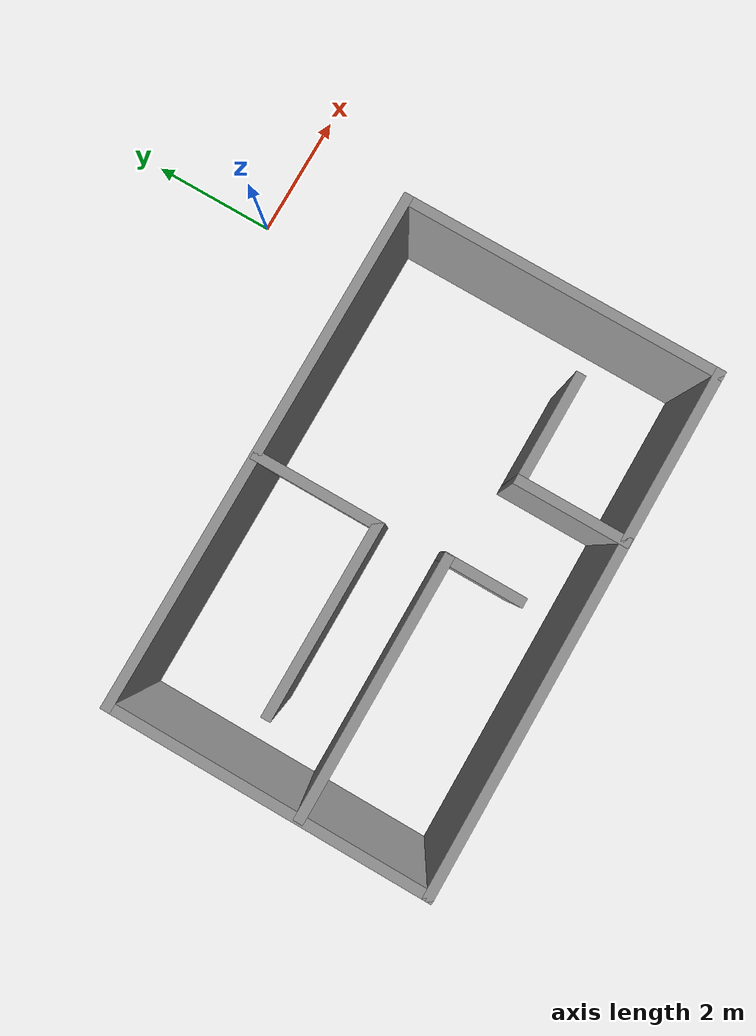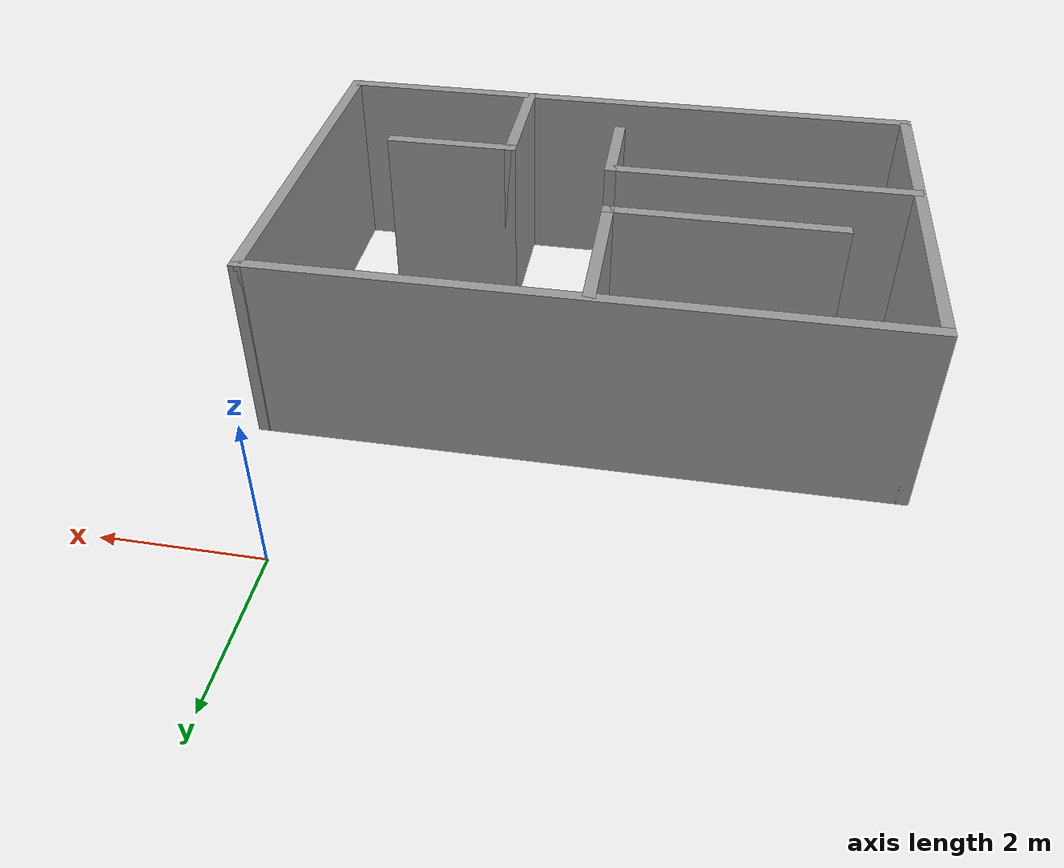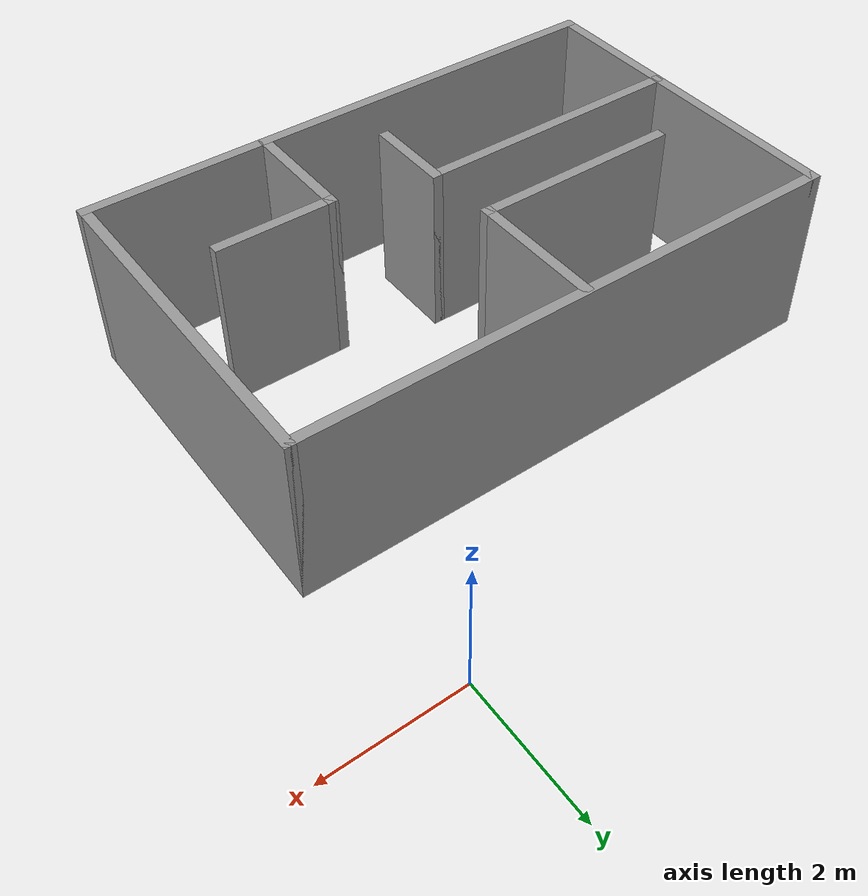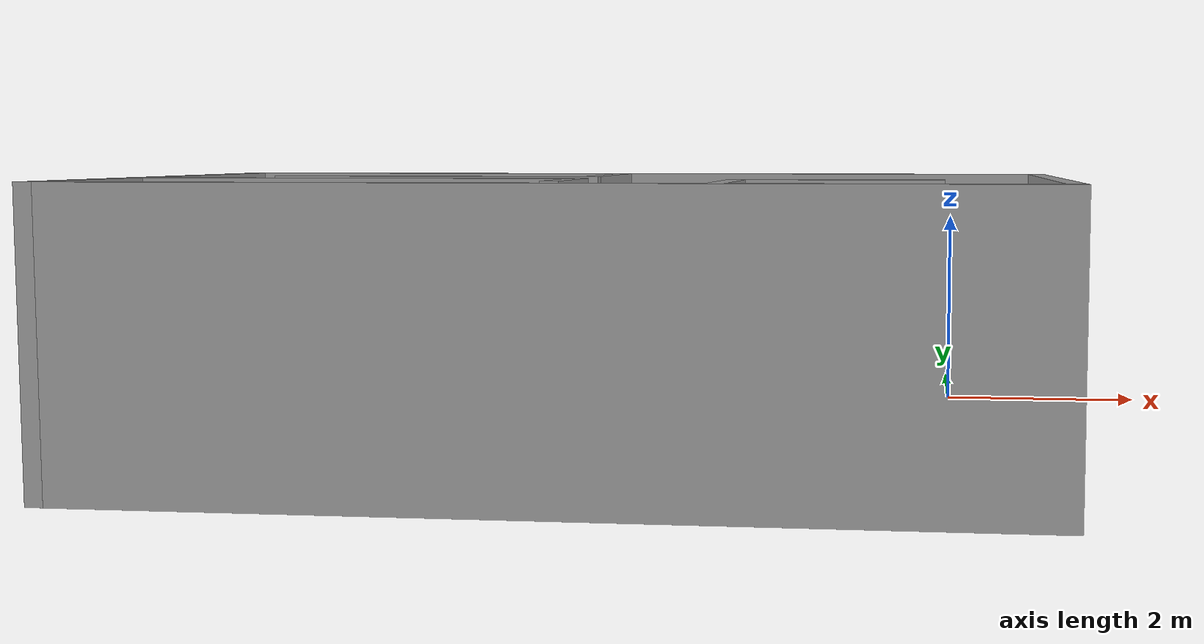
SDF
<?xml version='1.0'?>
<sdf version='1.7'>
  <model name='room'>
    <pose>-3.145 -3.5275 0 0 -0 0</pose>
    <link name='Wall_10'>
      <collision name='Wall_10_Collision'>
        <geometry>
          <box>
            <size>4 0.15 2.5</size>
          </box>
        </geometry>
        <pose>0 0 1.25 0 -0 0</pose>
      </collision>
      <visual name='Wall_10_Visual'>
        <pose>0 0 1.25 0 -0 0</pose>
        <geometry>
          <box>
            <size>4 0.15 2.5</size>
          </box>
        </geometry>
        <material>
          <script>
            <uri>file://media/materials/scripts/gazebo.material</uri>
            <name>Gazebo/Grey</name>
          </script>
          <ambient>1 1 1 1</ambient>
        </material>
        <meta>
          <layer>0</layer>
        </meta>
      </visual>
      <pose>-1.97 -1.5125 0 0 -0 0</pose>
    </link>
    <link name='Wall_11'>
      <collision name='Wall_11_Collision'>
        <geometry>
          <box>
            <size>1.25 0.15 2.5</size>
          </box>
        </geometry>
        <pose>0 0 1.25 0 -0 0</pose>
      </collision>
      <visual name='Wall_11_Visual'>
        <pose>0 0 1.25 0 -0 0</pose>
        <geometry>
          <box>
            <size>1.25 0.15 2.5</size>
          </box>
        </geometry>
        <material>
          <script>
            <uri>file://media/materials/scripts/gazebo.material</uri>
            <name>Gazebo/Grey</name>
          </script>
          <ambient>1 1 1 1</ambient>
        </material>
        <meta>
          <layer>0</layer>
        </meta>
      </visual>
      <pose>-0.045 -2.0625 0 0 -0 -1.5708</pose>
    </link>
    <link name='Wall_13'>
      <collision name='Wall_13_Collision'>
        <geometry>
          <box>
            <size>2 0.15 2.5</size>
          </box>
        </geometry>
        <pose>0 0 1.25 0 -0 0</pose>
      </collision>
      <visual name='Wall_13_Visual'>
        <pose>0 0 1.25 0 -0 0</pose>
        <geometry>
          <box>
            <size>2 0.15 2.5</size>
          </box>
        </geometry>
        <material>
          <script>
            <uri>file://media/materials/scripts/gazebo.material</uri>
            <name>Gazebo/Grey</name>
          </script>
          <ambient>1 1 1 1</ambient>
        </material>
        <meta>
          <layer>0</layer>
        </meta>
      </visual>
      <pose>-0.125 0.4425 0 0 -0 -1.5708</pose>
    </link>
    <link name='Wall_14'>
      <collision name='Wall_14_Collision'>
        <geometry>
          <box>
            <size>3 0.15 2.5</size>
          </box>
        </geometry>
        <pose>0 0 1.25 0 -0 0</pose>
      </collision>
      <visual name='Wall_14_Visual'>
        <pose>0 0 1.25 0 -0 0</pose>
        <geometry>
          <box>
            <size>3 0.15 2.5</size>
          </box>
        </geometry>
        <material>
          <script>
            <uri>file://media/materials/scripts/gazebo.material</uri>
            <name>Gazebo/Grey</name>
          </script>
          <ambient>1 1 1 1</ambient>
        </material>
        <meta>
          <layer>0</layer>
        </meta>
      </visual>
      <pose>-1.55 -0.4825 0 0 -0 3.14159</pose>
    </link>
    <link name='Wall_16'>
      <collision name='Wall_16_Collision'>
        <geometry>
          <box>
            <size>1.75 0.15 2.5</size>
          </box>
        </geometry>
        <pose>0 0 1.25 0 -0 0</pose>
      </collision>
      <visual name='Wall_16_Visual'>
        <pose>0 0 1.25 0 -0 0</pose>
        <geometry>
          <box>
            <size>1.75 0.15 2.5</size>
          </box>
        </geometry>
        <material>
          <script>
            <uri>file://media/materials/scripts/gazebo.material</uri>
            <name>Gazebo/Grey</name>
          </script>
          <ambient>1 1 1 1</ambient>
        </material>
        <meta>
          <layer>0</layer>
        </meta>
      </visual>
      <pose>1.335 -2.6425 0 0 -0 1.5708</pose>
    </link>
    <link name='Wall_17'>
      <collision name='Wall_17_Collision'>
        <geometry>
          <box>
            <size>1.75 0.15 2.5</size>
          </box>
        </geometry>
        <pose>0 0 1.25 0 -0 0</pose>
      </collision>
      <visual name='Wall_17_Visual'>
        <pose>0 0 1.25 0 -0 0</pose>
        <geometry>
          <box>
            <size>1.75 0.15 2.5</size>
          </box>
        </geometry>
        <material>
          <script>
            <uri>file://media/materials/scripts/gazebo.material</uri>
            <name>Gazebo/Grey</name>
          </script>
          <ambient>1 1 1 1</ambient>
        </material>
        <meta>
          <layer>0</layer>
        </meta>
      </visual>
      <pose>2.135 -1.8425 0 0 -0 0</pose>
    </link>
    <link name='Wall_5'>
      <collision name='Wall_5_Collision'>
        <geometry>
          <box>
            <size>8 0.15 2.5</size>
          </box>
        </geometry>
        <pose>0 0 1.25 0 -0 0</pose>
      </collision>
      <visual name='Wall_5_Visual'>
        <pose>0 0 1.25 0 -0 0</pose>
        <geometry>
          <box>
            <size>8 0.15 2.5</size>
          </box>
        </geometry>
        <material>
          <script>
            <uri>file://media/materials/scripts/gazebo.material</uri>
            <name>Gazebo/Grey</name>
          </script>
          <ambient>1 1 1 1</ambient>
        </material>
        <meta>
          <layer>0</layer>
        </meta>
      </visual>
      <pose>0 1.3975 0 0 -0 0</pose>
    </link>
    <link name='Wall_6'>
      <collision name='Wall_6_Collision'>
        <geometry>
          <box>
            <size>5 0.15 2.5</size>
          </box>
        </geometry>
        <pose>0 0 1.25 0 -0 0</pose>
      </collision>
      <visual name='Wall_6_Visual'>
        <pose>0 0 1.25 0 -0 0</pose>
        <geometry>
          <box>
            <size>5 0.15 2.5</size>
          </box>
        </geometry>
        <material>
          <script>
            <uri>file://media/materials/scripts/gazebo.material</uri>
            <name>Gazebo/Grey</name>
          </script>
          <ambient>1 1 1 1</ambient>
        </material>
        <meta>
          <layer>0</layer>
        </meta>
      </visual>
      <pose>3.925 -1.0275 0 0 -0 -1.5708</pose>
    </link>
    <link name='Wall_7'>
      <collision name='Wall_7_Collision'>
        <geometry>
          <box>
            <size>8 0.15 2.5</size>
          </box>
        </geometry>
        <pose>0 0 1.25 0 -0 0</pose>
      </collision>
      <visual name='Wall_7_Visual'>
        <pose>0 0 1.25 0 -0 0</pose>
        <geometry>
          <box>
            <size>8 0.15 2.5</size>
          </box>
        </geometry>
        <material>
          <script>
            <uri>file://media/materials/scripts/gazebo.material</uri>
            <name>Gazebo/Grey</name>
          </script>
          <ambient>1 1 1 1</ambient>
        </material>
        <meta>
          <layer>0</layer>
        </meta>
      </visual>
      <pose>0 -3.4525 0 0 -0 3.14159</pose>
    </link>
    <link name='Wall_8'>
      <collision name='Wall_8_Collision'>
        <geometry>
          <box>
            <size>5 0.15 2.5</size>
          </box>
        </geometry>
        <pose>0 0 1.25 0 -0 0</pose>
      </collision>
      <visual name='Wall_8_Visual'>
        <pose>0 0 1.25 0 -0 0</pose>
        <geometry>
          <box>
            <size>5 0.15 2.5</size>
          </box>
        </geometry>
        <material>
          <script>
            <uri>file://media/materials/scripts/gazebo.material</uri>
            <name>Gazebo/Grey</name>
          </script>
          <ambient>1 1 1 1</ambient>
        </material>
        <meta>
          <layer>0</layer>
        </meta>
      </visual>
      <pose>-3.925 -1.0275 0 0 -0 1.5708</pose>
    </link>
    <static>1</static>
  </model>
</sdf>
